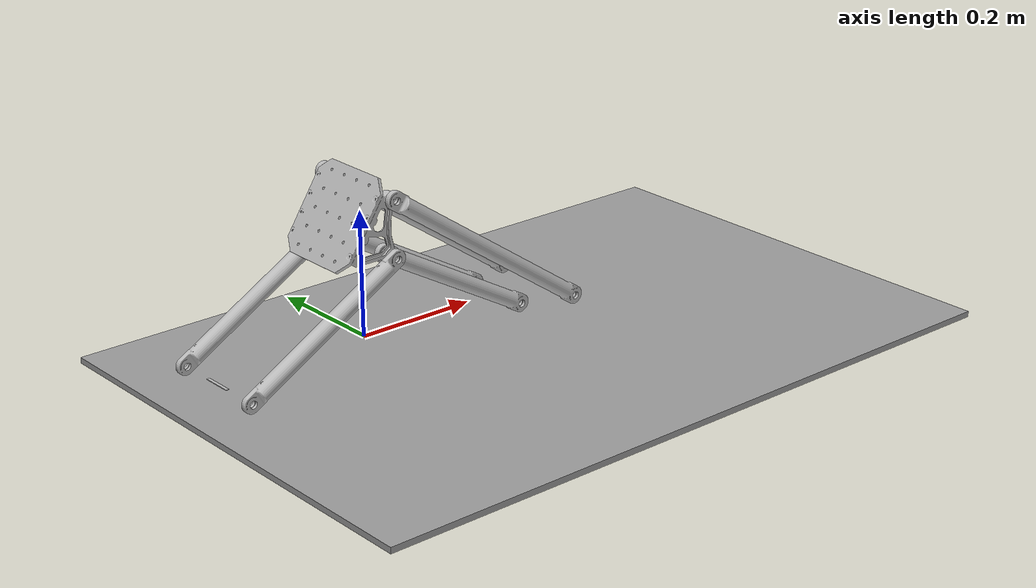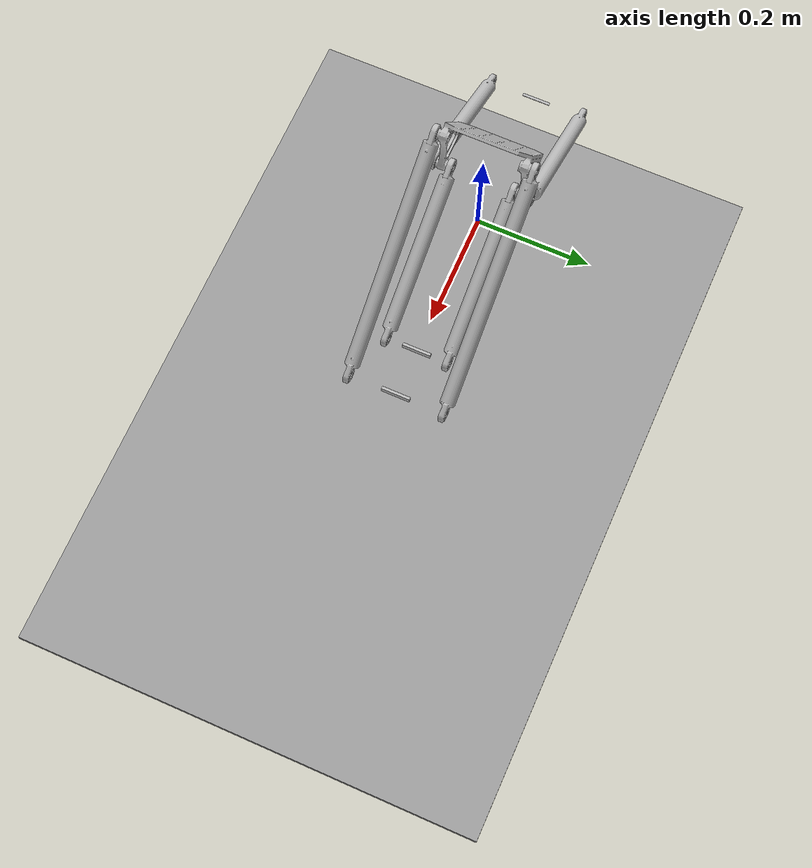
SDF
<?xml version="1.0"?>
<sdf version="1.6">
  <world name="TSP_world">

    <!-- Ground Plane-->

    <include>
      <uri>model://sun</uri>
    </include>

<include>
<pose> 0 0 0 0 0 0 </pose>
   <uri>model://TSP</uri>
 <plugin name="control_TSP" filename="libmodel_controller.so"/>
 </include>

  </world>
</sdf>

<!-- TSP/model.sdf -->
<sdf version='1.4'>
  <model name="TSP">
  <static> false </static>

<link name="bed">

  <pose>0.340192378865 0 -0.1 0 0 0</pose>
  <collision name="collision">
  <geometry>
  <box>
  <size>1.2 0.8 0.01</size>
  </box>
  </geometry>
  </collision>
   <visual name="visual">
   <material>
       <script>
         <uri>file://media/materials/scripts/gazebo.material</uri>
         <name>Gazebo/Grey</name>
       </script>
     </material>
      <geometry>
      <box>
      <size>1.2 0.8 0.01</size>
      </box>
      </geometry>
    </visual>
   </link>

<joint type="revolute" name="base">
<pose>0 0 0 0 0 0</pose>
<parent>world</parent>
<child>bed</child>
<axis>
<xyz>0 0 1</xyz>

</axis>
</joint>

<link name="slider1">
    <kinematic>1</kinematic>
    <pose>-0.259807621135 0 0 0 0 0</pose>
    <self_collide>1</self_collide>

     <visual name="visual">
        <geometry>
        <box>
        <size>0.005 0.05 0.001</size>
        </box>
        </geometry>
      </visual>

     <collision name="collision">
       <geometry>
       <box>
       <size>0.005 0.05 0.001</size>
       </box>
        </geometry>
      </collision>

    <inertial>
    <mass>2.6</mass>
    </inertial>
     </link>

<joint type="prismatic" name="base_slider1">
        <pose>0 0 0 0 0 0</pose>
        <parent>world</parent>
        <child>slider1</child>

       <axis>
         <xyz>1 0 0</xyz>
         <limit>
         <lower>0</lower>
         <upper>1.2</upper>
       </limit>

        </axis>
    </joint>

<link name='slider1_support_left'>
  <pose>-0.259807621135 0.085 0 1.5708 -0.523599 0 </pose>
  <self_collide>1</self_collide>

<inertial>
<mass>0.294</mass>
<pose>0.15 0 0 0 0 0</pose>
<inertia>
<ixx>0.004</ixx>
<ixy>0</ixy>
<ixz>0</ixz>
<iyy>0.004</iyy>
<iyz>0</iyz>
<izz>0.009</izz>
</inertia>
</inertial>

  <collision name='collision'>
    <pose>0 0 0 0 0 0</pose>
    <geometry>
      <mesh>
        <scale>0.001 0.001 0.001</scale>
        <uri>model://TSP/meshes/asm_linkage_300.stl</uri>
      </mesh>
    </geometry>
  </collision>
  1->SetAngle(0,0.1);

        this->motorJoint02->SetAngle(0,-0.1);

        this->motorJoint03->SetAngle(0,0.5);
  <visual name='visual'>
    <pose>0 0 0 0 0 0</pose>
    <geometry>
      <mesh>
        <scale>0.001 0.001 0.001</scale>
         <uri>model://TSP/meshes/asm_linkage_300.stl</uri>
      </mesh>
    </geometry>
  </visual>

</link>

<joint type="revolute" name="slider1_support_left_joint">
  <pose>0 0 0 0 0 0</pose>
  <parent>slider1</parent>
  <child>slider1_support_left</child>
  <axis>
    <xyz>0 1 0</xyz>

  </axis>
</joint>

<link name='slider1_support_right'>
  <pose>-0.259807621135 -0.085 0 1.5708 -0.523599 0 </pose>
  <self_collide>1</self_collide>

<inertial>
<mass>0.294</mass>
<pose>0.15 0 0 0 0 0</pose>
<inertia>
<ixx>0.004</ixx>
<ixy>0</ixy>
<ixz>0</ixz>
<iyy>0.004</iyy>
<iyz>0</iyz>
<izz>0.009</izz>
</inertia>
</inertial>

  <collision name='collision'>
    <pose>0 0 0 0 0 0</pose>
    <geometry>
      <mesh>
        <scale>0.001 0.001 0.001</scale>
        <uri>model://TSP/meshes/asm_linkage_300.stl</uri>
      </mesh>
    </geometry>
  </collision>

  <visual name='visual'>
    <pose>0 0 0 0 0 0</pose>1->SetAngle(0,0.1);

this->motorJoint02->SetAngle(0,-0.1);

this->motorJoint03->SetAngle(0,0.5);
    <geometry>
      <mesh>
        <scale>0.001 0.001 0.001</scale>
         <uri>model://TSP/meshes/asm_linkage_300.stl</uri>
      </mesh>
    </geometry>
  </visual>

</link>

<joint type="revolute" name="slider1_support_right_joint">
  <pose>0 0 0 0 0 0</pose>
  <parent>slider1</parent>
  <child>slider1_support_right</child>
  <axis>
    <xyz>0 1 0</xyz>

  </axis>
</joint>

<link name="slider2">
  <pose>0.259807621135 0 0 0 0 0</pose>
      <kinematic>1</kinematic>
      <self_collide>1</self_collide>

<inertial>
<mass>2.6</mass>
</inertial>

<collision name="collision">
 <geometry>
 <box>
 <size>0.005 0.05 0.01</size>
 </box>
  </geometry>
 </collision>

  <visual name="visual">
    <geometry>
      <box>
      <size>0.005 0.05 0.01</size>
      </box>
    </geometry>
  </visual>

</link>

<joint type="prismatic" name="base_slider2">
<pose>0 0 0 0 0 0</pose>
<parent>world</parent>
<child>slider2</child>
<axis>
<xyz>1 0 0</xyz>
<limit>
<lower>-0.519615242271</lower>
<upper>0.680384757729</upper>
</limit>
</axis>
</joint>

<link name='slider2_support_left'>
  <pose>0.259807621135 0.055 0 1.5707 3.66519 0</pose>
  <self_collide>1</self_collide>

<inertial>
<mass>0.294</mass>
<pose>0.15 0 0 0 0 0</pose>
<inertia>
<ixx>0.004</ixx>
<ixy>0</ixy>
<ixz>0</ixz>
<iyy>0.004</iyy>
<iyz>0</iyz>
<izz>0.009</izz>
</inertia>
</inertial>

 <collision name='collision'>
    <pose>0 0 0 0 0 0</pose>
    <geometry>
      <mesh>
        <scale>0.001 0.001 0.001</scale>
        <uri>model://TSP/meshes/asm_linkage_300.stl</uri>
      </mesh>
    </geometry>
  </collision>

  <visual name='visual'>
    <pose>0 0 0 0 0 0</pose>
    <geometry>
      <mesh>
        <scale>0.001 0.001 0.001</scale>
         <uri>model://TSP/meshes/asm_linkage_300.stl</uri>
      </mesh>
    </geometry>
  </visual>

</link>

<joint type="revolute" name="slider2_support_left_joint">
  <pose>0 0 0 0 0 0</pose>
  <parent>slider2</parent>
  <child>slider2_support_left</child>
  <axis>
    <xyz>0 1 0</xyz>
  </axis>
</joint>

<link name='slider2_support_right'>
  <pose>0.259807621135 -0.055 0 1.5707 3.66519 0</pose>
  <self_collide>1</self_collide>

<inertial>
<mass>0.294</mass>
<pose>0.15 0 0 0 0 0</pose>
<inertia>
<ixx>0.004</ixx>
<ixy>0</ixy>
<ixz>0</ixz>
<iyy>0.004</iyy>
<iyz>0</iyz>
<izz>0.009</izz>
</inertia>
</inertial>

 <collision name='collision'>
    <pose>0 0 0 0 0 0</pose>
    <geometry>
      <mesh>
        <scale>0.001 0.001 0.001</scale>
        <uri>model://TSP/meshes/asm_linkage_300.stl</uri>
      </mesh>
    </geometry>
  </collision>

  <visual name='visual'>
    <pose>0 0 0 0 0 0</pose>
    <geometry>
      <mesh>
        <scale>0.001 0.001 0.001</scale>
         <uri>model://TSP/meshes/asm_linkage_300.stl</uri>
      </mesh>
    </geometry>
  </visual>

</link>

<joint type="revolute" name="slider2_support_right_joint">
  <pose>0 0 0 0 0 0</pose>
  <parent>slider2</parent>
  <child>slider2_support_right</child>
  <axis>
    <xyz>0 1 0</xyz>
  </axis>
</joint>

<link name="slider3">
  <pose>0.344673758792 0 0 0 0 0</pose>
      <kinematic>1</kinematic>
      <self_collide>1</self_collide>

<inertial>
<mass>3.3</mass>
</inertial>

<collision name="collision">
 <geometry>
 <box>
 <size>0.005 0.05 0.01</size>
 </box>
  </geometry>
 </collision>

  <visual name="visual">
    <geometry>
      <box>
      <size>0.005 0.05 0.01</size>
      </box>
    </geometry>
  </visual>

</link>

<joint type="prismatic" name="base_slider3">
<pose>0 0 0 0 0 0</pose>
<parent>world</parent>
<child>slider3</child>
<axis>
<xyz>1 0 0</xyz>
<limit>
<lower>-0.604481379927</lower>
<upper>0.595518620073</upper>
</limit>
</axis>
</joint>

<link name='slider3_support_left'>
  <pose>0.344673758792 0.085 0 1.5707 -2.53334707359 0</pose>
  <self_collide>1</self_collide>

<inertial>
<mass>0.348</mass>
<pose>0.21 0 0 0 0 0</pose>
<inertia>
<ixx>0.004</ixx>
<ixy>0</ixy>
<ixz>0</ixz>
<iyy>0.004</iyy>
<iyz>0</iyz>
<izz>0.009</izz>
</inertia>
</inertial>

 <collision name='collision'>
    <pose>0 0 0 0 0 0</pose>
    <geometry>
      <mesh>
        <scale>0.001 0.001 0.001</scale>
        <uri>model://TSP/meshes/asm_linkage_420.stl</uri>
      </mesh>
    </geometry>
  </collision>

  <visual name='visual'>
    <pose>0 0 0 0 0 0</pose>
    <geometry>
      <mesh>
        <scale>0.001 0.001 0.001</scale>
         <uri>model://TSP/meshes/asm_linkage_420.stl</uri>
      </mesh>
    </geometry>
  </visual>

</link>

<joint type="revolute" name="slider3_support_left_joint">
  <pose>0 0 0 0 0 0</pose>
  <parent>slider3</parent>
  <child>slider3_support_left</child>
  <axis>
    <xyz>0 1 0</xyz>
  </axis>
</joint>

<link name='slider3_support_right'>
  <pose>0.344673758792 -0.085 0 1.5707 -2.53334707359 0</pose>
  <self_collide>1</self_collide>

<inertial>
<mass>0.348</mass>
<pose>0.21 0 0 0 0 0</pose>
<inertia>
<ixx>0.004</ixx>
<ixy>0</ixy>
<ixz>0</ixz>
<iyy>0.004</iyy>
<iyz>0</iyz>
<izz>0.009</izz>
</inertia>
</inertial>

 <collision name='collision'>
    <pose>0 0 0 0 0 0</pose>
    <geometry>
      <mesh>
        <scale>0.001 0.001 0.001</scale>
        <uri>model://TSP/meshes/asm_linkage_420.stl</uri>
      </mesh>
    </geometry>
  </collision>

  <visual name='visual'>
    <pose>0 0 0 0 0 0</pose>
    <geometry>
      <mesh>
        <scale>0.001 0.001 0.001</scale>
         <uri>model://TSP/meshes/asm_linkage_420.stl</uri>
      </mesh>
    </geometry>
  </visual>

</link>

<joint type="revolute" name="slider3_support_right_joint">
  <pose>0 0 0 0 0 0</pose>
  <parent>slider3</parent>
  <child>slider3_support_right</child>

  <axis>
    <xyz>0 1 0</xyz>
  </axis>
  </joint>

<link name='base_TSP'>
  <pose>0 0 0.15 0 -1.57079632679 0 </pose>
  <self_collide>1</self_collide>

  <inertial>
    <pose>0.045 0.025 0 0 0 0</pose>
    <mass>0.5</mass>
    <inertia>
      <ixx>1.1E-03</ixx>
      <ixy>0</ixy>
      <ixz>0</ixz>
      <iyy>1.1E-03</iyy>
      <iyz>0</iyz>
      <izz>1.1E-03</izz>
    </inertia>
  </inertial>

  <collision name='collision'>
    <pose>0 0 0 0 0 0</pose>
    <geometry>
      <mesh>
        <scale>0.001 0.001 0.001</scale>
   <uri>model://TSP/meshes/asm_pedal_blockv2simplified.stl</uri>
      </mesh>
    </geometry>
  </collision>

  <visual name='visual'>
    <pose>0 0 0 0 0 0</pose>
    <geometry>
      <mesh>
        <scale>0.001 0.001 0.001</scale>
        <uri>model://TSP/meshes/asm_pedal_blockv2simplified.stl</uri>
      </mesh>
    </geometry>
  </visual>

</link>

<joint type="revolute" name="slider1_support_left_base_TSP">
  <pose>0 0.085 0 0 0 0</pose>
  <parent>slider1_support_left</parent>
  <child>base_TSP</child>
  <axis>
    <xyz>0 1 0</xyz>
  </axis>
</joint>

<joint type="revolute" name="slider1_support_right_base_TSP">
  <pose>0 -0.085 0 0 0 0</pose>
  <parent>slider1_support_right</parent>
  <child>base_TSP</child>
  <axis>
    <xyz>0 1 0</xyz>
  </axis>
</joint>

<joint type="revolute" name="base_TSP_slider2_support_left">
  <pose>0.3 0 0 0 0 0</pose>

  <parent>base_TSP</parent>
  <child>slider2_support_left</child>
  <axis>
    <xyz>0 1 0</xyz>

  </axis>
</joint>

<joint type="revolute" name="base_TSP_slider2_support_right">
  <pose>0.3 0 0 0 0 0</pose>

  <parent>base_TSP</parent>
  <child>slider2_support_right</child>
  <axis>
    <xyz>0 1 0</xyz>

  </axis>
</joint>

<joint type="revolute" name="slider3_support_left_base_TSP">
  <pose>0.09 0.085 0 0 0 0</pose>

  <parent>slider3_support_left</parent>
  <child>base_TSP</child>
  <axis>
    <xyz>0 1 0 </xyz>

  </axis>
</joint>

<joint type="revolute" name="slider3_support_right_base_TSP">
  <pose>0.09 -0.085 0 0 0 0</pose>

  <parent>slider3_support_right</parent>
  <child>base_TSP</child>
  <axis>
    <xyz>0 1 0 </xyz>

  </axis>
</joint>

  </model>
</sdf>
